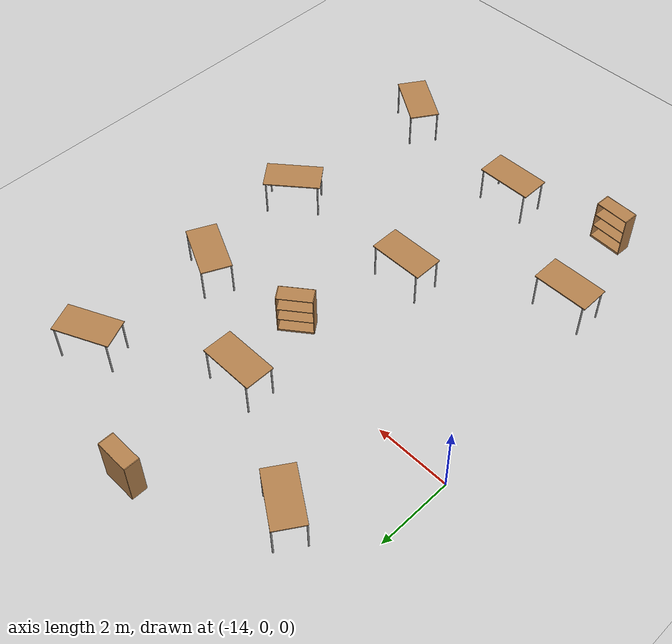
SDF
<sdf version="1.6">
 <world name="default">
  <model name="ground_plane">
   <static>1</static>
   <link name="link">
    <collision name="collision">
     <geometry><plane><normal>0 0 1</normal><size>100 100</size></plane></geometry>
     <surface>
      <contact><collide_bitmask>65535</collide_bitmask></contact>
      <friction><ode><mu>100</mu><mu2>50</mu2></ode></friction>
     </surface>
    </collision>
    <visual name="visual">
     <cast_shadows>0</cast_shadows>
     <geometry><plane><normal>0 0 1</normal><size>100 100</size></plane></geometry>
     <material>
      <script><uri>file://media/materials/scripts/gazebo.material</uri><name>Gazebo/Grey</name></script>
     </material>
    </visual>
   </link>
  </model>
  <model name="table">
   <static>1</static>
   <link name="link">
    <collision name="surface">
     <pose>0 0 1 0 -0 0</pose>
     <geometry><box><size>1.5 0.8 0.03</size></box></geometry>
     <surface><friction><ode><mu>0.6</mu><mu2>0.6</mu2></ode></friction></surface>
    </collision>
    <visual name="visual1">
     <pose>0 0 1 0 -0 0</pose>
     <geometry><box><size>1.5 0.8 0.03</size></box></geometry>
     <material>
      <script><uri>file://media/materials/scripts/gazebo.material</uri><name>Gazebo/Wood</name></script>
     </material>
    </visual>
    <collision name="front_left_leg">
     <pose>0.68 0.38 0.5 0 -0 0</pose>
     <geometry><cylinder><radius>0.02</radius><length>1</length></cylinder></geometry>
    </collision>
    <visual name="front_left_leg">
     <pose>0.68 0.38 0.5 0 -0 0</pose>
     <geometry><cylinder><radius>0.02</radius><length>1</length></cylinder></geometry>
     <material>
      <script><uri>file://media/materials/scripts/gazebo.material</uri><name>Gazebo/Grey</name></script>
     </material>
    </visual>
    <collision name="front_right_leg">
     <pose>0.68 -0.38 0.5 0 -0 0</pose>
     <geometry><cylinder><radius>0.02</radius><length>1</length></cylinder></geometry>
    </collision>
    <visual name="front_right_leg">
     <pose>0.68 -0.38 0.5 0 -0 0</pose>
     <geometry><cylinder><radius>0.02</radius><length>1</length></cylinder></geometry>
     <material>
      <script><uri>file://media/materials/scripts/gazebo.material</uri><name>Gazebo/Grey</name></script>
     </material>
    </visual>
    <collision name="back_right_leg">
     <pose>-0.68 -0.38 0.5 0 -0 0</pose>
     <geometry><cylinder><radius>0.02</radius><length>1</length></cylinder></geometry>
    </collision>
    <visual name="back_right_leg">
     <pose>-0.68 -0.38 0.5 0 -0 0</pose>
     <geometry><cylinder><radius>0.02</radius><length>1</length></cylinder></geometry>
     <material>
      <script><uri>file://media/materials/scripts/gazebo.material</uri><name>Gazebo/Grey</name></script>
     </material>
    </visual>
    <collision name="back_left_leg">
     <pose>-0.68 0.38 0.5 0 -0 0</pose>
     <geometry><cylinder><radius>0.02</radius><length>1</length></cylinder></geometry>
    </collision>
    <visual name="back_left_leg">
     <pose>-0.68 0.38 0.5 0 -0 0</pose>
     <geometry><cylinder><radius>0.02</radius><length>1</length></cylinder></geometry>
     <material>
      <script><uri>file://media/materials/scripts/gazebo.material</uri><name>Gazebo/Grey</name></script>
     </material>
    </visual>
   </link>
   <pose>-5.759 -0.343504 0 0 0 -0.441227</pose>
  </model>
  <model name="table_0">
   <static>1</static>
   <link name="link">
    <collision name="surface">
     <pose>0 0 1 0 -0 0</pose>
     <geometry><box><size>1.5 0.8 0.03</size></box></geometry>
     <surface><friction><ode><mu>0.6</mu><mu2>0.6</mu2></ode></friction></surface>
    </collision>
    <visual name="visual1">
     <pose>0 0 1 0 -0 0</pose>
     <geometry><box><size>1.5 0.8 0.03</size></box></geometry>
     <material>
      <script><uri>file://media/materials/scripts/gazebo.material</uri><name>Gazebo/Wood</name></script>
     </material>
    </visual>
    <collision name="front_left_leg">
     <pose>0.68 0.38 0.5 0 -0 0</pose>
     <geometry><cylinder><radius>0.02</radius><length>1</length></cylinder></geometry>
    </collision>
    <visual name="front_left_leg">
     <pose>0.68 0.38 0.5 0 -0 0</pose>
     <geometry><cylinder><radius>0.02</radius><length>1</length></cylinder></geometry>
     <material>
      <script><uri>file://media/materials/scripts/gazebo.material</uri><name>Gazebo/Grey</name></script>
     </material>
    </visual>
    <collision name="front_right_leg">
     <pose>0.68 -0.38 0.5 0 -0 0</pose>
     <geometry><cylinder><radius>0.02</radius><length>1</length></cylinder></geometry>
    </collision>
    <visual name="front_right_leg">
     <pose>0.68 -0.38 0.5 0 -0 0</pose>
     <geometry><cylinder><radius>0.02</radius><length>1</length></cylinder></geometry>
     <material>
      <script><uri>file://media/materials/scripts/gazebo.material</uri><name>Gazebo/Grey</name></script>
     </material>
    </visual>
    <collision name="back_right_leg">
     <pose>-0.68 -0.38 0.5 0 -0 0</pose>
     <geometry><cylinder><radius>0.02</radius><length>1</length></cylinder></geometry>
    </collision>
    <visual name="back_right_leg">
     <pose>-0.68 -0.38 0.5 0 -0 0</pose>
     <geometry><cylinder><radius>0.02</radius><length>1</length></cylinder></geometry>
     <material>
      <script><uri>file://media/materials/scripts/gazebo.material</uri><name>Gazebo/Grey</name></script>
     </material>
    </visual>
    <collision name="back_left_leg">
     <pose>-0.68 0.38 0.5 0 -0 0</pose>
     <geometry><cylinder><radius>0.02</radius><length>1</length></cylinder></geometry>
    </collision>
    <visual name="back_left_leg">
     <pose>-0.68 0.38 0.5 0 -0 0</pose>
     <geometry><cylinder><radius>0.02</radius><length>1</length></cylinder></geometry>
     <material>
      <script><uri>file://media/materials/scripts/gazebo.material</uri><name>Gazebo/Grey</name></script>
     </material>
    </visual>
   </link>
   <pose>-5.63329 3.22435 0 0 -0 0.426782</pose>
  </model>
  <model name="table_1">
   <static>1</static>
   <link name="link">
    <collision name="surface">
     <pose>0 0 1 0 -0 0</pose>
     <geometry><box><size>1.5 0.8 0.03</size></box></geometry>
     <surface><friction><ode><mu>0.6</mu><mu2>0.6</mu2></ode></friction></surface>
    </collision>
    <visual name="visual1">
     <pose>0 0 1 0 -0 0</pose>
     <geometry><box><size>1.5 0.8 0.03</size></box></geometry>
     <material>
      <script><uri>file://media/materials/scripts/gazebo.material</uri><name>Gazebo/Wood</name></script>
     </material>
    </visual>
    <collision name="front_left_leg">
     <pose>0.68 0.38 0.5 0 -0 0</pose>
     <geometry><cylinder><radius>0.02</radius><length>1</length></cylinder></geometry>
    </collision>
    <visual name="front_left_leg">
     <pose>0.68 0.38 0.5 0 -0 0</pose>
     <geometry><cylinder><radius>0.02</radius><length>1</length></cylinder></geometry>
     <material>
      <script><uri>file://media/materials/scripts/gazebo.material</uri><name>Gazebo/Grey</name></script>
     </material>
    </visual>
    <collision name="front_right_leg">
     <pose>0.68 -0.38 0.5 0 -0 0</pose>
     <geometry><cylinder><radius>0.02</radius><length>1</length></cylinder></geometry>
    </collision>
    <visual name="front_right_leg">
     <pose>0.68 -0.38 0.5 0 -0 0</pose>
     <geometry><cylinder><radius>0.02</radius><length>1</length></cylinder></geometry>
     <material>
      <script><uri>file://media/materials/scripts/gazebo.material</uri><name>Gazebo/Grey</name></script>
     </material>
    </visual>
    <collision name="back_right_leg">
     <pose>-0.68 -0.38 0.5 0 -0 0</pose>
     <geometry><cylinder><radius>0.02</radius><length>1</length></cylinder></geometry>
    </collision>
    <visual name="back_right_leg">
     <pose>-0.68 -0.38 0.5 0 -0 0</pose>
     <geometry><cylinder><radius>0.02</radius><length>1</length></cylinder></geometry>
     <material>
      <script><uri>file://media/materials/scripts/gazebo.material</uri><name>Gazebo/Grey</name></script>
     </material>
    </visual>
    <collision name="back_left_leg">
     <pose>-0.68 0.38 0.5 0 -0 0</pose>
     <geometry><cylinder><radius>0.02</radius><length>1</length></cylinder></geometry>
    </collision>
    <visual name="back_left_leg">
     <pose>-0.68 0.38 0.5 0 -0 0</pose>
     <geometry><cylinder><radius>0.02</radius><length>1</length></cylinder></geometry>
     <material>
      <script><uri>file://media/materials/scripts/gazebo.material</uri><name>Gazebo/Grey</name></script>
     </material>
    </visual>
   </link>
   <pose>-8.85797 1.39413 0 0 -0 0</pose>
  </model>
  <model name="table_2">
   <static>1</static>
   <link name="link">
    <collision name="surface">
     <pose>0 0 1 0 -0 0</pose>
     <geometry><box><size>1.5 0.8 0.03</size></box></geometry>
     <surface><friction><ode><mu>0.6</mu><mu2>0.6</mu2></ode></friction></surface>
    </collision>
    <visual name="visual1">
     <pose>0 0 1 0 -0 0</pose>
     <geometry><box><size>1.5 0.8 0.03</size></box></geometry>
     <material>
      <script><uri>file://media/materials/scripts/gazebo.material</uri><name>Gazebo/Wood</name></script>
     </material>
    </visual>
    <collision name="front_left_leg">
     <pose>0.68 0.38 0.5 0 -0 0</pose>
     <geometry><cylinder><radius>0.02</radius><length>1</length></cylinder></geometry>
    </collision>
    <visual name="front_left_leg">
     <pose>0.68 0.38 0.5 0 -0 0</pose>
     <geometry><cylinder><radius>0.02</radius><length>1</length></cylinder></geometry>
     <material>
      <script><uri>file://media/materials/scripts/gazebo.material</uri><name>Gazebo/Grey</name></script>
     </material>
    </visual>
    <collision name="front_right_leg">
     <pose>0.68 -0.38 0.5 0 -0 0</pose>
     <geometry><cylinder><radius>0.02</radius><length>1</length></cylinder></geometry>
    </collision>
    <visual name="front_right_leg">
     <pose>0.68 -0.38 0.5 0 -0 0</pose>
     <geometry><cylinder><radius>0.02</radius><length>1</length></cylinder></geometry>
     <material>
      <script><uri>file://media/materials/scripts/gazebo.material</uri><name>Gazebo/Grey</name></script>
     </material>
    </visual>
    <collision name="back_right_leg">
     <pose>-0.68 -0.38 0.5 0 -0 0</pose>
     <geometry><cylinder><radius>0.02</radius><length>1</length></cylinder></geometry>
    </collision>
    <visual name="back_right_leg">
     <pose>-0.68 -0.38 0.5 0 -0 0</pose>
     <geometry><cylinder><radius>0.02</radius><length>1</length></cylinder></geometry>
     <material>
      <script><uri>file://media/materials/scripts/gazebo.material</uri><name>Gazebo/Grey</name></script>
     </material>
    </visual>
    <collision name="back_left_leg">
     <pose>-0.68 0.38 0.5 0 -0 0</pose>
     <geometry><cylinder><radius>0.02</radius><length>1</length></cylinder></geometry>
    </collision>
    <visual name="back_left_leg">
     <pose>-0.68 0.38 0.5 0 -0 0</pose>
     <geometry><cylinder><radius>0.02</radius><length>1</length></cylinder></geometry>
     <material>
      <script><uri>file://media/materials/scripts/gazebo.material</uri><name>Gazebo/Grey</name></script>
     </material>
    </visual>
   </link>
   <pose>-12.1705 3.04957 0 0 0 -0.585762</pose>
  </model>
  <model name="table_9">
   <static>1</static>
   <link name="link">
    <collision name="surface">
     <pose>0 0 1 0 -0 0</pose>
     <geometry><box><size>1.5 0.8 0.03</size></box></geometry>
     <surface><friction><ode><mu>0.6</mu><mu2>0.6</mu2></ode></friction></surface>
    </collision>
    <visual name="visual1">
     <pose>0 0 1 0 -0 0</pose>
     <geometry><box><size>1.5 0.8 0.03</size></box></geometry>
     <material>
      <script><uri>file://media/materials/scripts/gazebo.material</uri><name>Gazebo/Wood</name></script>
     </material>
    </visual>
    <collision name="front_left_leg">
     <pose>0.68 0.38 0.5 0 -0 0</pose>
     <geometry><cylinder><radius>0.02</radius><length>1</length></cylinder></geometry>
    </collision>
    <visual name="front_left_leg">
     <pose>0.68 0.38 0.5 0 -0 0</pose>
     <geometry><cylinder><radius>0.02</radius><length>1</length></cylinder></geometry>
     <material>
      <script><uri>file://media/materials/scripts/gazebo.material</uri><name>Gazebo/Grey</name></script>
     </material>
    </visual>
    <collision name="front_right_leg">
     <pose>0.68 -0.38 0.5 0 -0 0</pose>
     <geometry><cylinder><radius>0.02</radius><length>1</length></cylinder></geometry>
    </collision>
    <visual name="front_right_leg">
     <pose>0.68 -0.38 0.5 0 -0 0</pose>
     <geometry><cylinder><radius>0.02</radius><length>1</length></cylinder></geometry>
     <material>
      <script><uri>file://media/materials/scripts/gazebo.material</uri><name>Gazebo/Grey</name></script>
     </material>
    </visual>
    <collision name="back_right_leg">
     <pose>-0.68 -0.38 0.5 0 -0 0</pose>
     <geometry><cylinder><radius>0.02</radius><length>1</length></cylinder></geometry>
    </collision>
    <visual name="back_right_leg">
     <pose>-0.68 -0.38 0.5 0 -0 0</pose>
     <geometry><cylinder><radius>0.02</radius><length>1</length></cylinder></geometry>
     <material>
      <script><uri>file://media/materials/scripts/gazebo.material</uri><name>Gazebo/Grey</name></script>
     </material>
    </visual>
    <collision name="back_left_leg">
     <pose>-0.68 0.38 0.5 0 -0 0</pose>
     <geometry><cylinder><radius>0.02</radius><length>1</length></cylinder></geometry>
    </collision>
    <visual name="back_left_leg">
     <pose>-0.68 0.38 0.5 0 -0 0</pose>
     <geometry><cylinder><radius>0.02</radius><length>1</length></cylinder></geometry>
     <material>
      <script><uri>file://media/materials/scripts/gazebo.material</uri><name>Gazebo/Grey</name></script>
     </material>
    </visual>
   </link>
   <pose>-5.55368 -8.19873 0 0 0 -0.575124</pose>
  </model>
  <model name="table_12">
   <static>1</static>
   <link name="link">
    <collision name="surface">
     <pose>0 0 1 0 -0 0</pose>
     <geometry><box><size>1.5 0.8 0.03</size></box></geometry>
     <surface><friction><ode><mu>0.6</mu><mu2>0.6</mu2></ode></friction></surface>
    </collision>
    <visual name="visual1">
     <pose>0 0 1 0 -0 0</pose>
     <geometry><box><size>1.5 0.8 0.03</size></box></geometry>
     <material>
      <script><uri>file://media/materials/scripts/gazebo.material</uri><name>Gazebo/Wood</name></script>
     </material>
    </visual>
    <collision name="front_left_leg">
     <pose>0.68 0.38 0.5 0 -0 0</pose>
     <geometry><cylinder><radius>0.02</radius><length>1</length></cylinder></geometry>
    </collision>
    <visual name="front_left_leg">
     <pose>0.68 0.38 0.5 0 -0 0</pose>
     <geometry><cylinder><radius>0.02</radius><length>1</length></cylinder></geometry>
     <material>
      <script><uri>file://media/materials/scripts/gazebo.material</uri><name>Gazebo/Grey</name></script>
     </material>
    </visual>
    <collision name="front_right_leg">
     <pose>0.68 -0.38 0.5 0 -0 0</pose>
     <geometry><cylinder><radius>0.02</radius><length>1</length></cylinder></geometry>
    </collision>
    <visual name="front_right_leg">
     <pose>0.68 -0.38 0.5 0 -0 0</pose>
     <geometry><cylinder><radius>0.02</radius><length>1</length></cylinder></geometry>
     <material>
      <script><uri>file://media/materials/scripts/gazebo.material</uri><name>Gazebo/Grey</name></script>
     </material>
    </visual>
    <collision name="back_right_leg">
     <pose>-0.68 -0.38 0.5 0 -0 0</pose>
     <geometry><cylinder><radius>0.02</radius><length>1</length></cylinder></geometry>
    </collision>
    <visual name="back_right_leg">
     <pose>-0.68 -0.38 0.5 0 -0 0</pose>
     <geometry><cylinder><radius>0.02</radius><length>1</length></cylinder></geometry>
     <material>
      <script><uri>file://media/materials/scripts/gazebo.material</uri><name>Gazebo/Grey</name></script>
     </material>
    </visual>
    <collision name="back_left_leg">
     <pose>-0.68 0.38 0.5 0 -0 0</pose>
     <geometry><cylinder><radius>0.02</radius><length>1</length></cylinder></geometry>
    </collision>
    <visual name="back_left_leg">
     <pose>-0.68 0.38 0.5 0 -0 0</pose>
     <geometry><cylinder><radius>0.02</radius><length>1</length></cylinder></geometry>
     <material>
      <script><uri>file://media/materials/scripts/gazebo.material</uri><name>Gazebo/Grey</name></script>
     </material>
    </visual>
   </link>
   <pose>-5.34718 -3.5889 0 0 -0 0.684097</pose>
  </model>
  <model name="table_13">
   <static>1</static>
   <link name="link">
    <collision name="surface">
     <pose>0 0 1 0 -0 0</pose>
     <geometry><box><size>1.5 0.8 0.03</size></box></geometry>
     <surface><friction><ode><mu>0.6</mu><mu2>0.6</mu2></ode></friction></surface>
    </collision>
    <visual name="visual1">
     <pose>0 0 1 0 -0 0</pose>
     <geometry><box><size>1.5 0.8 0.03</size></box></geometry>
     <material>
      <script><uri>file://media/materials/scripts/gazebo.material</uri><name>Gazebo/Wood</name></script>
     </material>
    </visual>
    <collision name="front_left_leg">
     <pose>0.68 0.38 0.5 0 -0 0</pose>
     <geometry><cylinder><radius>0.02</radius><length>1</length></cylinder></geometry>
    </collision>
    <visual name="front_left_leg">
     <pose>0.68 0.38 0.5 0 -0 0</pose>
     <geometry><cylinder><radius>0.02</radius><length>1</length></cylinder></geometry>
     <material>
      <script><uri>file://media/materials/scripts/gazebo.material</uri><name>Gazebo/Grey</name></script>
     </material>
    </visual>
    <collision name="front_right_leg">
     <pose>0.68 -0.38 0.5 0 -0 0</pose>
     <geometry><cylinder><radius>0.02</radius><length>1</length></cylinder></geometry>
    </collision>
    <visual name="front_right_leg">
     <pose>0.68 -0.38 0.5 0 -0 0</pose>
     <geometry><cylinder><radius>0.02</radius><length>1</length></cylinder></geometry>
     <material>
      <script><uri>file://media/materials/scripts/gazebo.material</uri><name>Gazebo/Grey</name></script>
     </material>
    </visual>
    <collision name="back_right_leg">
     <pose>-0.68 -0.38 0.5 0 -0 0</pose>
     <geometry><cylinder><radius>0.02</radius><length>1</length></cylinder></geometry>
    </collision>
    <visual name="back_right_leg">
     <pose>-0.68 -0.38 0.5 0 -0 0</pose>
     <geometry><cylinder><radius>0.02</radius><length>1</length></cylinder></geometry>
     <material>
      <script><uri>file://media/materials/scripts/gazebo.material</uri><name>Gazebo/Grey</name></script>
     </material>
    </visual>
    <collision name="back_left_leg">
     <pose>-0.68 0.38 0.5 0 -0 0</pose>
     <geometry><cylinder><radius>0.02</radius><length>1</length></cylinder></geometry>
    </collision>
    <visual name="back_left_leg">
     <pose>-0.68 0.38 0.5 0 -0 0</pose>
     <geometry><cylinder><radius>0.02</radius><length>1</length></cylinder></geometry>
     <material>
      <script><uri>file://media/materials/scripts/gazebo.material</uri><name>Gazebo/Grey</name></script>
     </material>
    </visual>
   </link>
   <pose>-9.33116 -3.67538 0 0 -0 0</pose>
  </model>
  <model name="table_14">
   <static>1</static>
   <link name="link">
    <collision name="surface">
     <pose>0 0 1 0 -0 0</pose>
     <geometry><box><size>1.5 0.8 0.03</size></box></geometry>
     <surface><friction><ode><mu>0.6</mu><mu2>0.6</mu2></ode></friction></surface>
    </collision>
    <visual name="visual1">
     <pose>0 0 1 0 -0 0</pose>
     <geometry><box><size>1.5 0.8 0.03</size></box></geometry>
     <material>
      <script><uri>file://media/materials/scripts/gazebo.material</uri><name>Gazebo/Wood</name></script>
     </material>
    </visual>
    <collision name="front_left_leg">
     <pose>0.68 0.38 0.5 0 -0 0</pose>
     <geometry><cylinder><radius>0.02</radius><length>1</length></cylinder></geometry>
    </collision>
    <visual name="front_left_leg">
     <pose>0.68 0.38 0.5 0 -0 0</pose>
     <geometry><cylinder><radius>0.02</radius><length>1</length></cylinder></geometry>
     <material>
      <script><uri>file://media/materials/scripts/gazebo.material</uri><name>Gazebo/Grey</name></script>
     </material>
    </visual>
    <collision name="front_right_leg">
     <pose>0.68 -0.38 0.5 0 -0 0</pose>
     <geometry><cylinder><radius>0.02</radius><length>1</length></cylinder></geometry>
    </collision>
    <visual name="front_right_leg">
     <pose>0.68 -0.38 0.5 0 -0 0</pose>
     <geometry><cylinder><radius>0.02</radius><length>1</length></cylinder></geometry>
     <material>
      <script><uri>file://media/materials/scripts/gazebo.material</uri><name>Gazebo/Grey</name></script>
     </material>
    </visual>
    <collision name="back_right_leg">
     <pose>-0.68 -0.38 0.5 0 -0 0</pose>
     <geometry><cylinder><radius>0.02</radius><length>1</length></cylinder></geometry>
    </collision>
    <visual name="back_right_leg">
     <pose>-0.68 -0.38 0.5 0 -0 0</pose>
     <geometry><cylinder><radius>0.02</radius><length>1</length></cylinder></geometry>
     <material>
      <script><uri>file://media/materials/scripts/gazebo.material</uri><name>Gazebo/Grey</name></script>
     </material>
    </visual>
    <collision name="back_left_leg">
     <pose>-0.68 0.38 0.5 0 -0 0</pose>
     <geometry><cylinder><radius>0.02</radius><length>1</length></cylinder></geometry>
    </collision>
    <visual name="back_left_leg">
     <pose>-0.68 0.38 0.5 0 -0 0</pose>
     <geometry><cylinder><radius>0.02</radius><length>1</length></cylinder></geometry>
     <material>
      <script><uri>file://media/materials/scripts/gazebo.material</uri><name>Gazebo/Grey</name></script>
     </material>
    </visual>
   </link>
   <pose>-9.43105 -7.66991 0 0 -0 0</pose>
  </model>
  <model name="table_15">
   <static>1</static>
   <link name="link">
    <collision name="surface">
     <pose>0 0 1 0 -0 0</pose>
     <geometry><box><size>1.5 0.8 0.03</size></box></geometry>
     <surface><friction><ode><mu>0.6</mu><mu2>0.6</mu2></ode></friction></surface>
    </collision>
    <visual name="visual1">
     <pose>0 0 1 0 -0 0</pose>
     <geometry><box><size>1.5 0.8 0.03</size></box></geometry>
     <material>
      <script><uri>file://media/materials/scripts/gazebo.material</uri><name>Gazebo/Wood</name></script>
     </material>
    </visual>
    <collision name="front_left_leg">
     <pose>0.68 0.38 0.5 0 -0 0</pose>
     <geometry><cylinder><radius>0.02</radius><length>1</length></cylinder></geometry>
    </collision>
    <visual name="front_left_leg">
     <pose>0.68 0.38 0.5 0 -0 0</pose>
     <geometry><cylinder><radius>0.02</radius><length>1</length></cylinder></geometry>
     <material>
      <script><uri>file://media/materials/scripts/gazebo.material</uri><name>Gazebo/Grey</name></script>
     </material>
    </visual>
    <collision name="front_right_leg">
     <pose>0.68 -0.38 0.5 0 -0 0</pose>
     <geometry><cylinder><radius>0.02</radius><length>1</length></cylinder></geometry>
    </collision>
    <visual name="front_right_leg">
     <pose>0.68 -0.38 0.5 0 -0 0</pose>
     <geometry><cylinder><radius>0.02</radius><length>1</length></cylinder></geometry>
     <material>
      <script><uri>file://media/materials/scripts/gazebo.material</uri><name>Gazebo/Grey</name></script>
     </material>
    </visual>
    <collision name="back_right_leg">
     <pose>-0.68 -0.38 0.5 0 -0 0</pose>
     <geometry><cylinder><radius>0.02</radius><length>1</length></cylinder></geometry>
    </collision>
    <visual name="back_right_leg">
     <pose>-0.68 -0.38 0.5 0 -0 0</pose>
     <geometry><cylinder><radius>0.02</radius><length>1</length></cylinder></geometry>
     <material>
      <script><uri>file://media/materials/scripts/gazebo.material</uri><name>Gazebo/Grey</name></script>
     </material>
    </visual>
    <collision name="back_left_leg">
     <pose>-0.68 0.38 0.5 0 -0 0</pose>
     <geometry><cylinder><radius>0.02</radius><length>1</length></cylinder></geometry>
    </collision>
    <visual name="back_left_leg">
     <pose>-0.68 0.38 0.5 0 -0 0</pose>
     <geometry><cylinder><radius>0.02</radius><length>1</length></cylinder></geometry>
     <material>
      <script><uri>file://media/materials/scripts/gazebo.material</uri><name>Gazebo/Grey</name></script>
     </material>
    </visual>
   </link>
   <pose>-12.7865 -5.73731 0 0 -0 0</pose>
  </model>
  <model name="bookshelf">
   <static>1</static>
   <link name="link">
    <inertial><mass>1</mass></inertial>
    <collision name="back">
     <pose>0 0.005 0.6 0 -0 0</pose>
     <geometry><box><size>0.9 0.01 1.2</size></box></geometry>
    </collision>
    <visual name="visual1">
     <pose>0 0.005 0.6 0 -0 0</pose>
     <geometry><box><size>0.9 0.01 1.2</size></box></geometry>
     <material>
      <script><uri>file://media/materials/scripts/gazebo.material</uri><name>Gazebo/Wood</name></script>
     </material>
    </visual>
    <collision name="left_side">
     <pose>0.45 -0.195 0.6 0 -0 0</pose>
     <geometry><box><size>0.02 0.4 1.2</size></box></geometry>
    </collision>
    <visual name="visual2">
     <pose>0.45 -0.195 0.6 0 -0 0</pose>
     <geometry><box><size>0.02 0.4 1.2</size></box></geometry>
     <material>
      <script><uri>file://media/materials/scripts/gazebo.material</uri><name>Gazebo/Wood</name></script>
     </material>
    </visual>
    <collision name="right_side">
     <pose>-0.45 -0.195 0.6 0 -0 0</pose>
     <geometry><box><size>0.02 0.4 1.2</size></box></geometry>
    </collision>
    <visual name="visual3">
     <pose>-0.45 -0.195 0.6 0 -0 0</pose>
     <geometry><box><size>0.02 0.4 1.2</size></box></geometry>
     <material>
      <script><uri>file://media/materials/scripts/gazebo.material</uri><name>Gazebo/Wood</name></script>
     </material>
    </visual>
    <collision name="bottom">
     <pose>0 -0.195 0.03 0 -0 0</pose>
     <geometry><box><size>0.88 0.4 0.06</size></box></geometry>
    </collision>
    <visual name="visual4">
     <pose>0 -0.195 0.03 0 -0 0</pose>
     <geometry><box><size>0.88 0.4 0.06</size></box></geometry>
     <material>
      <script><uri>file://media/materials/scripts/gazebo.material</uri><name>Gazebo/Wood</name></script>
     </material>
    </visual>
    <collision name="top">
     <pose>0 -0.195 1.19 0 -0 0</pose>
     <geometry><box><size>0.88 0.4 0.02</size></box></geometry>
    </collision>
    <visual name="visual5">
     <pose>0 -0.195 1.19 0 -0 0</pose>
     <geometry><box><size>0.88 0.4 0.02</size></box></geometry>
     <material>
      <script><uri>file://media/materials/scripts/gazebo.material</uri><name>Gazebo/Wood</name></script>
     </material>
    </visual>
    <collision name="low_shelf">
     <pose>0 -0.195 0.43 0 -0 0</pose>
     <geometry><box><size>0.88 0.4 0.02</size></box></geometry>
    </collision>
    <visual name="visual6">
     <pose>0 -0.195 0.43 0 -0 0</pose>
     <geometry><box><size>0.88 0.4 0.02</size></box></geometry>
     <material>
      <script><uri>file://media/materials/scripts/gazebo.material</uri><name>Gazebo/Wood</name></script>
     </material>
    </visual>
    <collision name="high_shelf">
     <pose>0 -0.195 0.8 0 -0 0</pose>
     <geometry><box><size>0.88 0.4 0.02</size></box></geometry>
    </collision>
    <visual name="visual7">
     <pose>0 -0.195 0.8 0 -0 0</pose>
     <geometry><box><size>0.88 0.4 0.02</size></box></geometry>
     <material>
      <script><uri>file://media/materials/scripts/gazebo.material</uri><name>Gazebo/Wood</name></script>
     </material>
    </visual>
   </link>
   <pose>-9.00953 5.04153 0 0 -0 0</pose>
  </model>
  <model name="bookshelf_3">
   <static>1</static>
   <link name="link">
    <inertial><mass>1</mass></inertial>
    <collision name="back">
     <pose>0 0.005 0.6 0 -0 0</pose>
     <geometry><box><size>0.9 0.01 1.2</size></box></geometry>
    </collision>
    <visual name="visual1">
     <pose>0 0.005 0.6 0 -0 0</pose>
     <geometry><box><size>0.9 0.01 1.2</size></box></geometry>
     <material>
      <script><uri>file://media/materials/scripts/gazebo.material</uri><name>Gazebo/Wood</name></script>
     </material>
    </visual>
    <collision name="left_side">
     <pose>0.45 -0.195 0.6 0 -0 0</pose>
     <geometry><box><size>0.02 0.4 1.2</size></box></geometry>
    </collision>
    <visual name="visual2">
     <pose>0.45 -0.195 0.6 0 -0 0</pose>
     <geometry><box><size>0.02 0.4 1.2</size></box></geometry>
     <material>
      <script><uri>file://media/materials/scripts/gazebo.material</uri><name>Gazebo/Wood</name></script>
     </material>
    </visual>
    <collision name="right_side">
     <pose>-0.45 -0.195 0.6 0 -0 0</pose>
     <geometry><box><size>0.02 0.4 1.2</size></box></geometry>
    </collision>
    <visual name="visual3">
     <pose>-0.45 -0.195 0.6 0 -0 0</pose>
     <geometry><box><size>0.02 0.4 1.2</size></box></geometry>
     <material>
      <script><uri>file://media/materials/scripts/gazebo.material</uri><name>Gazebo/Wood</name></script>
     </material>
    </visual>
    <collision name="bottom">
     <pose>0 -0.195 0.03 0 -0 0</pose>
     <geometry><box><size>0.88 0.4 0.06</size></box></geometry>
    </collision>
    <visual name="visual4">
     <pose>0 -0.195 0.03 0 -0 0</pose>
     <geometry><box><size>0.88 0.4 0.06</size></box></geometry>
     <material>
      <script><uri>file://media/materials/scripts/gazebo.material</uri><name>Gazebo/Wood</name></script>
     </material>
    </visual>
    <collision name="top">
     <pose>0 -0.195 1.19 0 -0 0</pose>
     <geometry><box><size>0.88 0.4 0.02</size></box></geometry>
    </collision>
    <visual name="visual5">
     <pose>0 -0.195 1.19 0 -0 0</pose>
     <geometry><box><size>0.88 0.4 0.02</size></box></geometry>
     <material>
      <script><uri>file://media/materials/scripts/gazebo.material</uri><name>Gazebo/Wood</name></script>
     </material>
    </visual>
    <collision name="low_shelf">
     <pose>0 -0.195 0.43 0 -0 0</pose>
     <geometry><box><size>0.88 0.4 0.02</size></box></geometry>
    </collision>
    <visual name="visual6">
     <pose>0 -0.195 0.43 0 -0 0</pose>
     <geometry><box><size>0.88 0.4 0.02</size></box></geometry>
     <material>
      <script><uri>file://media/materials/scripts/gazebo.material</uri><name>Gazebo/Wood</name></script>
     </material>
    </visual>
    <collision name="high_shelf">
     <pose>0 -0.195 0.8 0 -0 0</pose>
     <geometry><box><size>0.88 0.4 0.02</size></box></geometry>
    </collision>
    <visual name="visual7">
     <pose>0 -0.195 0.8 0 -0 0</pose>
     <geometry><box><size>0.88 0.4 0.02</size></box></geometry>
     <material>
      <script><uri>file://media/materials/scripts/gazebo.material</uri><name>Gazebo/Wood</name></script>
     </material>
    </visual>
   </link>
   <pose>-8.37084 -0.894046 0 0 0 -2.49457</pose>
  </model>
  <model name="bookshelf_4">
   <static>1</static>
   <link name="link">
    <inertial><mass>1</mass></inertial>
    <collision name="back">
     <pose>0 0.005 0.6 0 -0 0</pose>
     <geometry><box><size>0.9 0.01 1.2</size></box></geometry>
    </collision>
    <visual name="visual1">
     <pose>0 0.005 0.6 0 -0 0</pose>
     <geometry><box><size>0.9 0.01 1.2</size></box></geometry>
     <material>
      <script><uri>file://media/materials/scripts/gazebo.material</uri><name>Gazebo/Wood</name></script>
     </material>
    </visual>
    <collision name="left_side">
     <pose>0.45 -0.195 0.6 0 -0 0</pose>
     <geometry><box><size>0.02 0.4 1.2</size></box></geometry>
    </collision>
    <visual name="visual2">
     <pose>0.45 -0.195 0.6 0 -0 0</pose>
     <geometry><box><size>0.02 0.4 1.2</size></box></geometry>
     <material>
      <script><uri>file://media/materials/scripts/gazebo.material</uri><name>Gazebo/Wood</name></script>
     </material>
    </visual>
    <collision name="right_side">
     <pose>-0.45 -0.195 0.6 0 -0 0</pose>
     <geometry><box><size>0.02 0.4 1.2</size></box></geometry>
    </collision>
    <visual name="visual3">
     <pose>-0.45 -0.195 0.6 0 -0 0</pose>
     <geometry><box><size>0.02 0.4 1.2</size></box></geometry>
     <material>
      <script><uri>file://media/materials/scripts/gazebo.material</uri><name>Gazebo/Wood</name></script>
     </material>
    </visual>
    <collision name="bottom">
     <pose>0 -0.195 0.03 0 -0 0</pose>
     <geometry><box><size>0.88 0.4 0.06</size></box></geometry>
    </collision>
    <visual name="visual4">
     <pose>0 -0.195 0.03 0 -0 0</pose>
     <geometry><box><size>0.88 0.4 0.06</size></box></geometry>
     <material>
      <script><uri>file://media/materials/scripts/gazebo.material</uri><name>Gazebo/Wood</name></script>
     </material>
    </visual>
    <collision name="top">
     <pose>0 -0.195 1.19 0 -0 0</pose>
     <geometry><box><size>0.88 0.4 0.02</size></box></geometry>
    </collision>
    <visual name="visual5">
     <pose>0 -0.195 1.19 0 -0 0</pose>
     <geometry><box><size>0.88 0.4 0.02</size></box></geometry>
     <material>
      <script><uri>file://media/materials/scripts/gazebo.material</uri><name>Gazebo/Wood</name></script>
     </material>
    </visual>
    <collision name="low_shelf">
     <pose>0 -0.195 0.43 0 -0 0</pose>
     <geometry><box><size>0.88 0.4 0.02</size></box></geometry>
    </collision>
    <visual name="visual6">
     <pose>0 -0.195 0.43 0 -0 0</pose>
     <geometry><box><size>0.88 0.4 0.02</size></box></geometry>
     <material>
      <script><uri>file://media/materials/scripts/gazebo.material</uri><name>Gazebo/Wood</name></script>
     </material>
    </visual>
    <collision name="high_shelf">
     <pose>0 -0.195 0.8 0 -0 0</pose>
     <geometry><box><size>0.88 0.4 0.02</size></box></geometry>
    </collision>
    <visual name="visual7">
     <pose>0 -0.195 0.8 0 -0 0</pose>
     <geometry><box><size>0.88 0.4 0.02</size></box></geometry>
     <material>
      <script><uri>file://media/materials/scripts/gazebo.material</uri><name>Gazebo/Wood</name></script>
     </material>
    </visual>
   </link>
   <pose>-12.191 -8.60733 0 0 -0 3.09332</pose>
  </model>
 </world>
</sdf>
